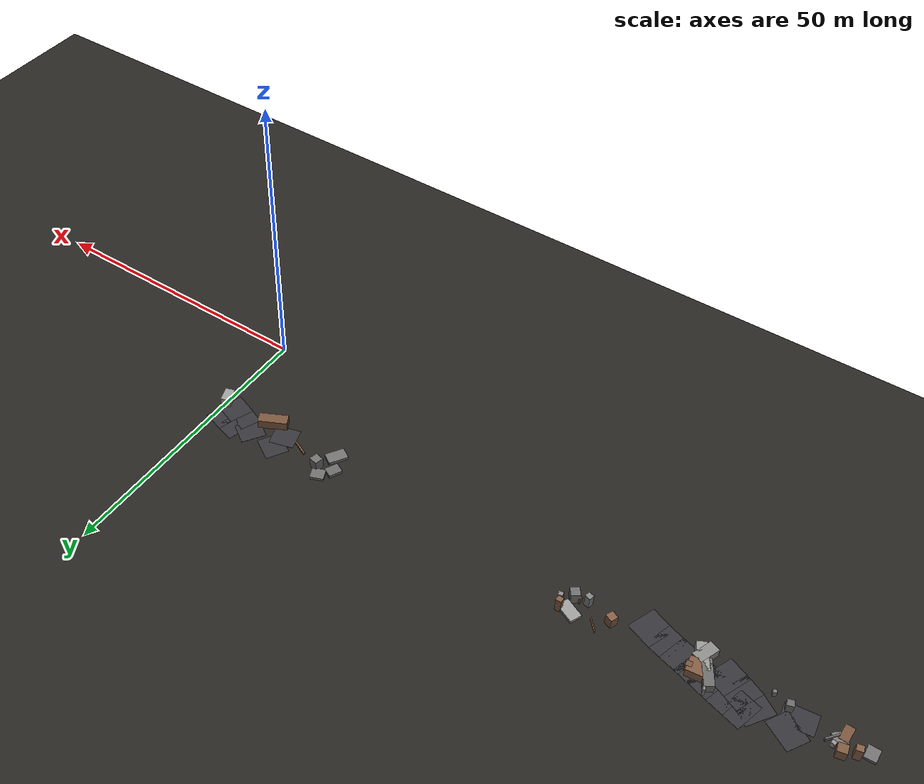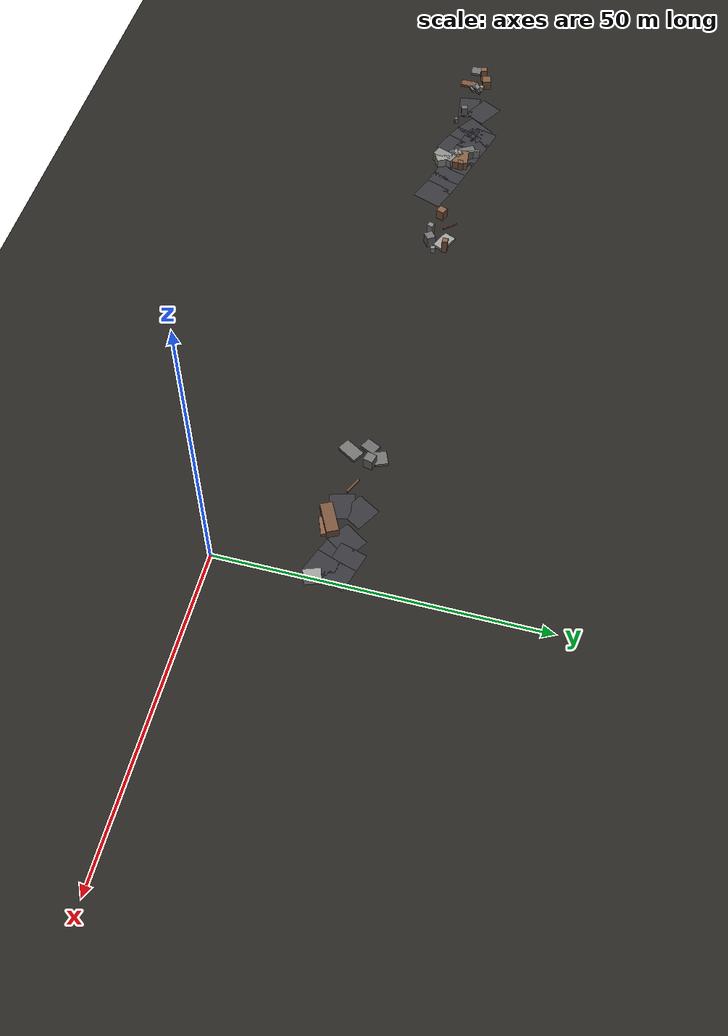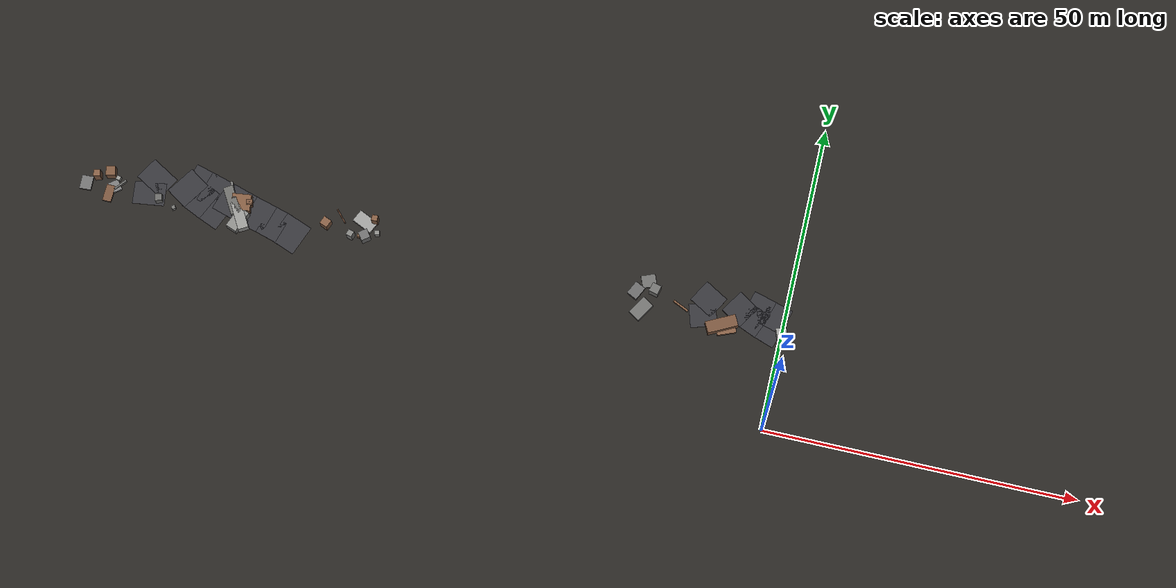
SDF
<sdf version="1.6">
 <world name="navitas_arena">
  <model name="ground_plane">
   <static>true</static>
   <link name="link">
    <collision name="collision">
     <geometry><plane><normal>0 0 1</normal><size>400 400</size></plane></geometry>
     <surface><friction><ode><mu>0.750</mu><mu2>0.750</mu2></ode></friction></surface>
    </collision>
    <visual name="visual">
     <cast_shadows>false</cast_shadows>
     <geometry><plane><normal>0 0 1</normal><size>400 400</size></plane></geometry>
     <material><ambient>0.150 0.140 0.130 1</ambient><diffuse>0.150 0.140 0.130 1</diffuse></material>
    </visual>
   </link>
  </model>
  <model name="road_kolay_1_18">
   <static>true</static>
   <pose>-103.160 16.111 0.040 0 0 1.696</pose>
   <link name="link">
    <collision name="col"><geometry><box><size>3.700 5.100 0.020</size></box></geometry></collision>
    <visual name="vis">
     <geometry><box><size>3.700 5.100 0.020</size></box></geometry>
     <material><ambient>0.20 0.20 0.22 1</ambient><diffuse>0.20 0.20 0.22 1</diffuse></material>
    </visual>
   </link>
  </model>
  <model name="road_kolay_1_19">
   <static>true</static>
   <pose>-102.569 18.815 0.040 0 0 1.043</pose>
   <link name="link">
    <collision name="col"><geometry><box><size>3.943 5.100 0.020</size></box></geometry></collision>
    <visual name="vis">
     <geometry><box><size>3.943 5.100 0.020</size></box></geometry>
     <material><ambient>0.20 0.20 0.22 1</ambient><diffuse>0.20 0.20 0.22 1</diffuse></material>
    </visual>
   </link>
  </model>
  <model name="road_kolay_2_14">
   <static>true</static>
   <pose>-92.224 15.758 0.040 0 0 2.748</pose>
   <link name="link">
    <collision name="col"><geometry><box><size>4.039 5.100 0.020</size></box></geometry></collision>
    <visual name="vis">
     <geometry><box><size>4.039 5.100 0.020</size></box></geometry>
     <material><ambient>0.20 0.20 0.22 1</ambient><diffuse>0.20 0.20 0.22 1</diffuse></material>
    </visual>
   </link>
  </model>
  <model name="road_kolay_2_15">
   <static>true</static>
   <pose>-94.904 16.930 0.040 0 0 2.708</pose>
   <link name="link">
    <collision name="col"><geometry><box><size>3.613 5.100 0.020</size></box></geometry></collision>
    <visual name="vis">
     <geometry><box><size>3.613 5.100 0.020</size></box></geometry>
     <material><ambient>0.20 0.20 0.22 1</ambient><diffuse>0.20 0.20 0.22 1</diffuse></material>
    </visual>
   </link>
  </model>
  <model name="road_kolay_2_16">
   <static>true</static>
   <pose>-97.375 18.320 0.040 0 0 2.557</pose>
   <link name="link">
    <collision name="col"><geometry><box><size>3.873 5.100 0.020</size></box></geometry></collision>
    <visual name="vis">
     <geometry><box><size>3.873 5.100 0.020</size></box></geometry>
     <material><ambient>0.20 0.20 0.22 1</ambient><diffuse>0.20 0.20 0.22 1</diffuse></material>
    </visual>
   </link>
  </model>
  <model name="road_kolay_3_17">
   <static>true</static>
   <pose>-79.588 14.627 0.040 0 0 2.777</pose>
   <link name="link">
    <collision name="col"><geometry><box><size>4.514 5.100 0.020</size></box></geometry></collision>
    <visual name="vis">
     <geometry><box><size>4.514 5.100 0.020</size></box></geometry>
     <material><ambient>0.20 0.20 0.22 1</ambient><diffuse>0.20 0.20 0.22 1</diffuse></material>
    </visual>
   </link>
  </model>
  <model name="road_kolay_3_18">
   <static>true</static>
   <pose>-82.578 15.657 0.040 0 0 2.853</pose>
   <link name="link">
    <collision name="col"><geometry><box><size>3.615 5.100 0.020</size></box></geometry></collision>
    <visual name="vis">
     <geometry><box><size>3.615 5.100 0.020</size></box></geometry>
     <material><ambient>0.20 0.20 0.22 1</ambient><diffuse>0.20 0.20 0.22 1</diffuse></material>
    </visual>
   </link>
  </model>
  <model name="road_kolay_3_19">
   <static>true</static>
   <pose>-85.192 16.409 0.040 0 0 2.869</pose>
   <link name="link">
    <collision name="col"><geometry><box><size>3.627 5.100 0.020</size></box></geometry></collision>
    <visual name="vis">
     <geometry><box><size>3.627 5.100 0.020</size></box></geometry>
     <material><ambient>0.20 0.20 0.22 1</ambient><diffuse>0.20 0.20 0.22 1</diffuse></material>
    </visual>
   </link>
  </model>
  <model name="road_kolay_3_20">
   <static>true</static>
   <pose>-87.720 17.138 0.040 0 0 2.852</pose>
   <link name="link">
    <collision name="col"><geometry><box><size>3.435 5.100 0.020</size></box></geometry></collision>
    <visual name="vis">
     <geometry><box><size>3.435 5.100 0.020</size></box></geometry>
     <material><ambient>0.20 0.20 0.22 1</ambient><diffuse>0.20 0.20 0.22 1</diffuse></material>
    </visual>
   </link>
  </model>
  <model name="road_kolay_3_21">
   <static>true</static>
   <pose>-90.267 17.910 0.040 0 0 2.843</pose>
   <link name="link">
    <collision name="col"><geometry><box><size>3.688 5.100 0.020</size></box></geometry></collision>
    <visual name="vis">
     <geometry><box><size>3.688 5.100 0.020</size></box></geometry>
     <material><ambient>0.20 0.20 0.22 1</ambient><diffuse>0.20 0.20 0.22 1</diffuse></material>
    </visual>
   </link>
  </model>
  <model name="road_kolay_3_22">
   <static>true</static>
   <pose>-93.019 18.730 0.040 0 0 2.860</pose>
   <link name="link">
    <collision name="col"><geometry><box><size>3.854 5.100 0.020</size></box></geometry></collision>
    <visual name="vis">
     <geometry><box><size>3.854 5.100 0.020</size></box></geometry>
     <material><ambient>0.20 0.20 0.22 1</ambient><diffuse>0.20 0.20 0.22 1</diffuse></material>
    </visual>
   </link>
  </model>
  <model name="road_kolay_3_23">
   <static>true</static>
   <pose>-95.802 19.520 0.040 0 0 2.870</pose>
   <link name="link">
    <collision name="col"><geometry><box><size>3.732 5.100 0.020</size></box></geometry></collision>
    <visual name="vis">
     <geometry><box><size>3.732 5.100 0.020</size></box></geometry>
     <material><ambient>0.20 0.20 0.22 1</ambient><diffuse>0.20 0.20 0.22 1</diffuse></material>
    </visual>
   </link>
  </model>
  <model name="blk_kolay_3_1_0">
   <static>true</static>
   <pose>-88.019 15.550 0.800 0 0 2.092</pose>
   <link name="link">
    <collision name="col"><geometry><box><size>4.784 1.679 1.600</size></box></geometry></collision>
    <visual name="vis">
     <geometry><box><size>4.784 1.679 1.600</size></box></geometry>
     <material><ambient>0.58 0.58 0.57 1</ambient><diffuse>0.58 0.58 0.57 1</diffuse></material>
    </visual>
   </link>
  </model>
  <model name="blk_kolay_3_1_2">
   <static>true</static>
   <pose>-89.333 16.692 0.800 0 0 2.700</pose>
   <link name="link">
    <collision name="col"><geometry><box><size>1.090 1.090 1.600</size></box></geometry></collision>
    <visual name="vis">
     <geometry><box><size>1.090 1.090 1.600</size></box></geometry>
     <material><ambient>0.56 0.56 0.55 1</ambient><diffuse>0.56 0.56 0.55 1</diffuse></material>
    </visual>
   </link>
  </model>
  <model name="blk_kolay_3_1_3">
   <static>true</static>
   <pose>-89.757 17.584 0.800 0 0 2.107</pose>
   <link name="link">
    <collision name="col"><geometry><box><size>4.628 1.579 1.600</size></box></geometry></collision>
    <visual name="vis">
     <geometry><box><size>4.628 1.579 1.600</size></box></geometry>
     <material><ambient>0.41 0.41 0.40 1</ambient><diffuse>0.41 0.41 0.40 1</diffuse></material>
    </visual>
   </link>
  </model>
  <model name="blk_kolay_3_1_4">
   <static>true</static>
   <pose>-89.936 18.940 0.800 0 0 1.960</pose>
   <link name="link">
    <collision name="col"><geometry><box><size>3.393 0.346 1.600</size></box></geometry></collision>
    <visual name="vis">
     <geometry><box><size>3.393 0.346 1.600</size></box></geometry>
     <material><ambient>0.49 0.49 0.48 1</ambient><diffuse>0.49 0.49 0.48 1</diffuse></material>
    </visual>
   </link>
  </model>
  <model name="blk_kolay_3_1_5">
   <static>true</static>
   <pose>-86.971 17.860 0.800 0 0 0.179</pose>
   <link name="link">
    <collision name="col"><geometry><box><size>0.924 0.924 1.600</size></box></geometry></collision>
    <visual name="vis">
     <geometry><box><size>0.924 0.924 1.600</size></box></geometry>
     <material><ambient>0.46 0.32 0.23 1</ambient><diffuse>0.46 0.32 0.23 1</diffuse></material>
    </visual>
   </link>
  </model>
  <model name="blk_kolay_3_1_6">
   <static>true</static>
   <pose>-88.251 17.571 0.800 0 0 0.124</pose>
   <link name="link">
    <collision name="col"><geometry><box><size>3.070 2.653 1.600</size></box></geometry></collision>
    <visual name="vis">
     <geometry><box><size>3.070 2.653 1.600</size></box></geometry>
     <material><ambient>0.50 0.35 0.25 1</ambient><diffuse>0.50 0.35 0.25 1</diffuse></material>
    </visual>
   </link>
  </model>
  <model name="blk_kolay_3_1_7">
   <static>true</static>
   <pose>-88.085 14.722 0.800 0 0 1.194</pose>
   <link name="link">
    <collision name="col"><geometry><box><size>3.651 1.856 1.600</size></box></geometry></collision>
    <visual name="vis">
     <geometry><box><size>3.651 1.856 1.600</size></box></geometry>
     <material><ambient>0.53 0.53 0.52 1</ambient><diffuse>0.53 0.53 0.52 1</diffuse></material>
    </visual>
   </link>
  </model>
  <model name="deb_kolay_5">
   <static>true</static>
   <pose>-68.653 16.613 0.505 0 0 3.050</pose>
   <link name="link">
    <collision name="col"><geometry><box><size>0.656 0.656 1.011</size></box></geometry></collision>
    <visual name="vis">
     <geometry><box><size>0.656 0.656 1.011</size></box></geometry>
     <material><ambient>0.46 0.33 0.23 1</ambient><diffuse>0.46 0.33 0.23 1</diffuse></material>
    </visual>
   </link>
  </model>
  <model name="deb_kolay_20">
   <static>true</static>
   <pose>-68.351 19.086 0.251 0 0 2.710</pose>
   <link name="link">
    <collision name="col"><geometry><box><size>3.457 2.064 0.502</size></box></geometry></collision>
    <visual name="vis">
     <geometry><box><size>3.457 2.064 0.502</size></box></geometry>
     <material><ambient>0.60 0.60 0.59 1</ambient><diffuse>0.60 0.60 0.59 1</diffuse></material>
    </visual>
   </link>
  </model>
  <model name="deb_kolay_25">
   <static>true</static>
   <pose>-72.325 19.159 0.150 0 0 2.306</pose>
   <link name="link">
    <collision name="col"><geometry><box><size>2.564 0.171 0.300</size></box></geometry></collision>
    <visual name="vis">
     <geometry><box><size>2.564 0.171 0.300</size></box></geometry>
     <material><ambient>0.48 0.33 0.24 1</ambient><diffuse>0.48 0.33 0.24 1</diffuse></material>
    </visual>
   </link>
  </model>
  <model name="deb_kolay_32">
   <static>true</static>
   <pose>-107.945 16.354 0.305 0 0 0.884</pose>
   <link name="link">
    <collision name="col"><geometry><box><size>2.297 0.276 0.609</size></box></geometry></collision>
    <visual name="vis">
     <geometry><box><size>2.297 0.276 0.609</size></box></geometry>
     <material><ambient>0.40 0.40 0.39 1</ambient><diffuse>0.40 0.40 0.39 1</diffuse></material>
    </visual>
   </link>
  </model>
  <model name="deb_kolay_37">
   <static>true</static>
   <pose>-67.834 16.609 0.949 0 0 2.218</pose>
   <link name="link">
    <collision name="col"><geometry><box><size>1.495 1.495 1.898</size></box></geometry></collision>
    <visual name="vis">
     <geometry><box><size>1.495 1.495 1.898</size></box></geometry>
     <material><ambient>0.42 0.42 0.42 1</ambient><diffuse>0.42 0.42 0.42 1</diffuse></material>
    </visual>
   </link>
  </model>
  <model name="deb_kolay_41">
   <static>true</static>
   <pose>-108.897 15.841 0.199 0 0 2.222</pose>
   <link name="link">
    <collision name="col"><geometry><box><size>1.816 2.076 0.399</size></box></geometry></collision>
    <visual name="vis">
     <geometry><box><size>1.816 2.076 0.399</size></box></geometry>
     <material><ambient>0.46 0.46 0.46 1</ambient><diffuse>0.46 0.46 0.46 1</diffuse></material>
    </visual>
   </link>
  </model>
  <model name="deb_kolay_48">
   <static>true</static>
   <pose>-66.776 19.473 1.258 0 0 1.565</pose>
   <link name="link">
    <collision name="col"><geometry><box><size>0.926 0.926 2.517</size></box></geometry></collision>
    <visual name="vis">
     <geometry><box><size>0.926 0.926 2.517</size></box></geometry>
     <material><ambient>0.50 0.35 0.25 1</ambient><diffuse>0.50 0.35 0.25 1</diffuse></material>
    </visual>
   </link>
  </model>
  <model name="deb_kolay_99">
   <static>true</static>
   <pose>-108.467 17.307 0.468 0 0 2.912</pose>
   <link name="link">
    <collision name="col"><geometry><box><size>0.656 0.656 0.936</size></box></geometry></collision>
    <visual name="vis">
     <geometry><box><size>0.656 0.656 0.936</size></box></geometry>
     <material><ambient>0.57 0.57 0.55 1</ambient><diffuse>0.57 0.57 0.55 1</diffuse></material>
    </visual>
   </link>
  </model>
  <model name="deb_kolay_100">
   <static>true</static>
   <pose>-98.664 14.551 0.471 0 0 2.082</pose>
   <link name="link">
    <collision name="col"><geometry><box><size>0.573 0.573 0.942</size></box></geometry></collision>
    <visual name="vis">
     <geometry><box><size>0.573 0.573 0.942</size></box></geometry>
     <material><ambient>0.44 0.44 0.43 1</ambient><diffuse>0.44 0.44 0.43 1</diffuse></material>
    </visual>
   </link>
  </model>
  <model name="deb_kolay_117">
   <static>true</static>
   <pose>-66.027 17.586 0.527 0 0 0.232</pose>
   <link name="link">
    <collision name="col"><geometry><box><size>0.739 0.739 1.054</size></box></geometry></collision>
    <visual name="vis">
     <geometry><box><size>0.739 0.739 1.054</size></box></geometry>
     <material><ambient>0.53 0.53 0.52 1</ambient><diffuse>0.53 0.53 0.52 1</diffuse></material>
    </visual>
   </link>
  </model>
  <model name="deb_kolay_142">
   <static>true</static>
   <pose>-74.311 17.313 0.928 0 0 2.747</pose>
   <link name="link">
    <collision name="col"><geometry><box><size>1.335 1.335 1.856</size></box></geometry></collision>
    <visual name="vis">
     <geometry><box><size>1.335 1.335 1.856</size></box></geometry>
     <material><ambient>0.51 0.36 0.26 1</ambient><diffuse>0.51 0.36 0.26 1</diffuse></material>
    </visual>
   </link>
  </model>
  <model name="deb_kolay_156">
   <static>true</static>
   <pose>-111.696 17.001 1.165 0 0 1.806</pose>
   <link name="link">
    <collision name="col"><geometry><box><size>1.065 1.065 2.329</size></box></geometry></collision>
    <visual name="vis">
     <geometry><box><size>1.065 1.065 2.329</size></box></geometry>
     <material><ambient>0.51 0.36 0.26 1</ambient><diffuse>0.51 0.36 0.26 1</diffuse></material>
    </visual>
   </link>
  </model>
  <model name="deb_kolay_169">
   <static>true</static>
   <pose>-113.362 15.578 0.216 0 0 1.605</pose>
   <link name="link">
    <collision name="col"><geometry><box><size>2.235 1.837 0.433</size></box></geometry></collision>
    <visual name="vis">
     <geometry><box><size>2.235 1.837 0.433</size></box></geometry>
     <material><ambient>0.43 0.43 0.43 1</ambient><diffuse>0.43 0.43 0.43 1</diffuse></material>
    </visual>
   </link>
  </model>
  <model name="deb_kolay_170">
   <static>true</static>
   <pose>-109.789 17.945 0.877 0 0 1.805</pose>
   <link name="link">
    <collision name="col"><geometry><box><size>1.497 1.497 1.755</size></box></geometry></collision>
    <visual name="vis">
     <geometry><box><size>1.497 1.497 1.755</size></box></geometry>
     <material><ambient>0.48 0.34 0.24 1</ambient><diffuse>0.48 0.34 0.24 1</diffuse></material>
    </visual>
   </link>
  </model>
  <model name="deb_kolay_179">
   <static>true</static>
   <pose>-109.409 14.664 0.214 0 0 1.550</pose>
   <link name="link">
    <collision name="col"><geometry><box><size>2.698 1.398 0.428</size></box></geometry></collision>
    <visual name="vis">
     <geometry><box><size>2.698 1.398 0.428</size></box></geometry>
     <material><ambient>0.46 0.32 0.23 1</ambient><diffuse>0.46 0.32 0.23 1</diffuse></material>
    </visual>
   </link>
  </model>
  <model name="deb_kolay_182">
   <static>true</static>
   <pose>-70.015 16.304 1.114 0 0 2.879</pose>
   <link name="link">
    <collision name="col"><geometry><box><size>0.949 0.949 2.228</size></box></geometry></collision>
    <visual name="vis">
     <geometry><box><size>0.949 0.949 2.228</size></box></geometry>
     <material><ambient>0.50 0.50 0.49 1</ambient><diffuse>0.50 0.50 0.49 1</diffuse></material>
    </visual>
   </link>
  </model>
  <model name="chic_kolay_8">
   <static>true</static>
   <pose>-101.284 15.463 0.800 0 0 1.877</pose>
   <link name="link">
    <collision name="col"><geometry><box><size>1.099 1.099 1.600</size></box></geometry></collision>
    <visual name="vis">
     <geometry><box><size>1.099 1.099 1.600</size></box></geometry>
     <material><ambient>0.40 0.40 0.39 1</ambient><diffuse>0.40 0.40 0.39 1</diffuse></material>
    </visual>
   </link>
  </model>
  <model name="road_orta_1_21">
   <static>true</static>
   <pose>-12.805 16.111 0.040 0 0 1.857</pose>
   <link name="link">
    <collision name="col"><geometry><box><size>3.795 4.250 0.020</size></box></geometry></collision>
    <visual name="vis">
     <geometry><box><size>3.795 4.250 0.020</size></box></geometry>
     <material><ambient>0.20 0.20 0.22 1</ambient><diffuse>0.20 0.20 0.22 1</diffuse></material>
    </visual>
   </link>
  </model>
  <model name="road_orta_1_22">
   <static>true</static>
   <pose>-12.434 18.815 0.040 0 0 1.036</pose>
   <link name="link">
    <collision name="col"><geometry><box><size>3.957 4.250 0.020</size></box></geometry></collision>
    <visual name="vis">
     <geometry><box><size>3.957 4.250 0.020</size></box></geometry>
     <material><ambient>0.20 0.20 0.22 1</ambient><diffuse>0.20 0.20 0.22 1</diffuse></material>
    </visual>
   </link>
  </model>
  <model name="road_orta_2_17">
   <static>true</static>
   <pose>-2.223 15.986 0.040 0 0 2.799</pose>
   <link name="link">
    <collision name="col"><geometry><box><size>3.986 4.250 0.020</size></box></geometry></collision>
    <visual name="vis">
     <geometry><box><size>3.986 4.250 0.020</size></box></geometry>
     <material><ambient>0.20 0.20 0.22 1</ambient><diffuse>0.20 0.20 0.22 1</diffuse></material>
    </visual>
   </link>
  </model>
  <model name="road_orta_2_18">
   <static>true</static>
   <pose>-4.845 17.002 0.040 0 0 2.739</pose>
   <link name="link">
    <collision name="col"><geometry><box><size>3.440 4.250 0.020</size></box></geometry></collision>
    <visual name="vis">
     <geometry><box><size>3.440 4.250 0.020</size></box></geometry>
     <material><ambient>0.20 0.20 0.22 1</ambient><diffuse>0.20 0.20 0.22 1</diffuse></material>
    </visual>
   </link>
  </model>
  <model name="road_orta_2_19">
   <static>true</static>
   <pose>-7.261 18.320 0.040 0 0 2.560</pose>
   <link name="link">
    <collision name="col"><geometry><box><size>3.885 4.250 0.020</size></box></geometry></collision>
    <visual name="vis">
     <geometry><box><size>3.885 4.250 0.020</size></box></geometry>
     <material><ambient>0.20 0.20 0.22 1</ambient><diffuse>0.20 0.20 0.22 1</diffuse></material>
    </visual>
   </link>
  </model>
  <model name="road_orta_3_23">
   <static>true</static>
   <pose>-1.532 18.320 0.040 0 0 2.854</pose>
   <link name="link">
    <collision name="col"><geometry><box><size>3.815 4.250 0.020</size></box></geometry></collision>
    <visual name="vis">
     <geometry><box><size>3.815 4.250 0.020</size></box></geometry>
     <material><ambient>0.20 0.20 0.22 1</ambient><diffuse>0.20 0.20 0.22 1</diffuse></material>
    </visual>
   </link>
  </model>
  <model name="road_orta_3_24">
   <static>true</static>
   <pose>-4.322 19.133 0.040 0 0 2.863</pose>
   <link name="link">
    <collision name="col"><geometry><box><size>3.797 4.250 0.020</size></box></geometry></collision>
    <visual name="vis">
     <geometry><box><size>3.797 4.250 0.020</size></box></geometry>
     <material><ambient>0.20 0.20 0.22 1</ambient><diffuse>0.20 0.20 0.22 1</diffuse></material>
    </visual>
   </link>
  </model>
  <model name="blk_orta_3_2_4">
   <static>true</static>
   <pose>0.049 15.176 0.800 0 0 1.920</pose>
   <link name="link">
    <collision name="col"><geometry><box><size>2.591 1.643 1.600</size></box></geometry></collision>
    <visual name="vis">
     <geometry><box><size>2.591 1.643 1.600</size></box></geometry>
     <material><ambient>0.60 0.60 0.59 1</ambient><diffuse>0.60 0.60 0.59 1</diffuse></material>
    </visual>
   </link>
  </model>
  <model name="deb_orta_11">
   <static>true</static>
   <pose>-21.003 18.196 1.010 0 0 1.329</pose>
   <link name="link">
    <collision name="col"><geometry><box><size>1.507 1.507 2.019</size></box></geometry></collision>
    <visual name="vis">
     <geometry><box><size>1.507 1.507 2.019</size></box></geometry>
     <material><ambient>0.43 0.43 0.42 1</ambient><diffuse>0.43 0.43 0.42 1</diffuse></material>
    </visual>
   </link>
  </model>
  <model name="deb_orta_97">
   <static>true</static>
   <pose>-8.817 14.675 0.272 0 0 0.379</pose>
   <link name="link">
    <collision name="col"><geometry><box><size>3.063 1.753 0.544</size></box></geometry></collision>
    <visual name="vis">
     <geometry><box><size>3.063 1.753 0.544</size></box></geometry>
     <material><ambient>0.51 0.36 0.26 1</ambient><diffuse>0.51 0.36 0.26 1</diffuse></material>
    </visual>
   </link>
  </model>
  <model name="deb_orta_98">
   <static>true</static>
   <pose>-23.912 17.571 0.287 0 0 1.113</pose>
   <link name="link">
    <collision name="col"><geometry><box><size>2.330 1.810 0.574</size></box></geometry></collision>
    <visual name="vis">
     <geometry><box><size>2.330 1.810 0.574</size></box></geometry>
     <material><ambient>0.40 0.40 0.40 1</ambient><diffuse>0.40 0.40 0.40 1</diffuse></material>
    </visual>
   </link>
  </model>
  <model name="deb_orta_148">
   <static>true</static>
   <pose>-22.278 19.539 0.245 0 0 0.382</pose>
   <link name="link">
    <collision name="col"><geometry><box><size>2.297 2.001 0.490</size></box></geometry></collision>
    <visual name="vis">
     <geometry><box><size>2.297 2.001 0.490</size></box></geometry>
     <material><ambient>0.42 0.42 0.41 1</ambient><diffuse>0.42 0.42 0.41 1</diffuse></material>
    </visual>
   </link>
  </model>
  <model name="deb_orta_153">
   <static>true</static>
   <pose>-9.089 15.376 0.193 0 0 0.482</pose>
   <link name="link">
    <collision name="col"><geometry><box><size>3.300 1.687 0.385</size></box></geometry></collision>
    <visual name="vis">
     <geometry><box><size>3.300 1.687 0.385</size></box></geometry>
     <material><ambient>0.44 0.44 0.44 1</ambient><diffuse>0.44 0.44 0.44 1</diffuse></material>
    </visual>
   </link>
  </model>
  <model name="deb_orta_205">
   <static>true</static>
   <pose>-22.511 14.857 0.262 0 0 1.022</pose>
   <link name="link">
    <collision name="col"><geometry><box><size>3.366 2.069 0.523</size></box></geometry></collision>
    <visual name="vis">
     <geometry><box><size>3.366 2.069 0.523</size></box></geometry>
     <material><ambient>0.43 0.43 0.42 1</ambient><diffuse>0.43 0.43 0.42 1</diffuse></material>
    </visual>
   </link>
  </model>
  <model name="deb_orta_243">
   <static>true</static>
   <pose>-16.532 16.747 0.188 0 0 2.706</pose>
   <link name="link">
    <collision name="col"><geometry><box><size>2.773 0.296 0.376</size></box></geometry></collision>
    <visual name="vis">
     <geometry><box><size>2.773 0.296 0.376</size></box></geometry>
     <material><ambient>0.52 0.37 0.26 1</ambient><diffuse>0.52 0.37 0.26 1</diffuse></material>
    </visual>
   </link>
  </model>
  <model name="chic_orta_8">
   <static>true</static>
   <pose>-9.628 15.036 0.800 0 0 0.468</pose>
   <link name="link">
    <collision name="col"><geometry><box><size>4.939 1.882 1.600</size></box></geometry></collision>
    <visual name="vis">
     <geometry><box><size>4.939 1.882 1.600</size></box></geometry>
     <material><ambient>0.46 0.32 0.23 1</ambient><diffuse>0.46 0.32 0.23 1</diffuse></material>
    </visual>
   </link>
  </model>
 </world>
</sdf>
